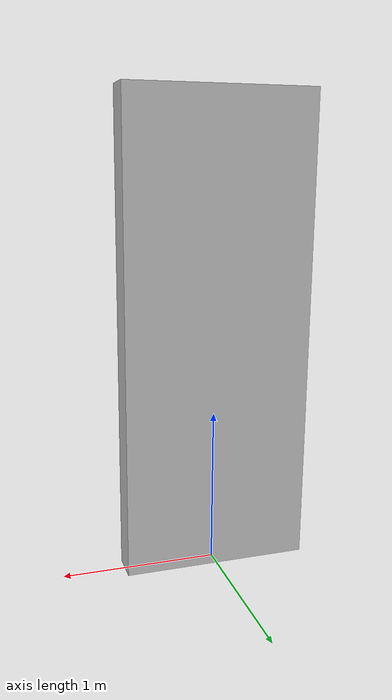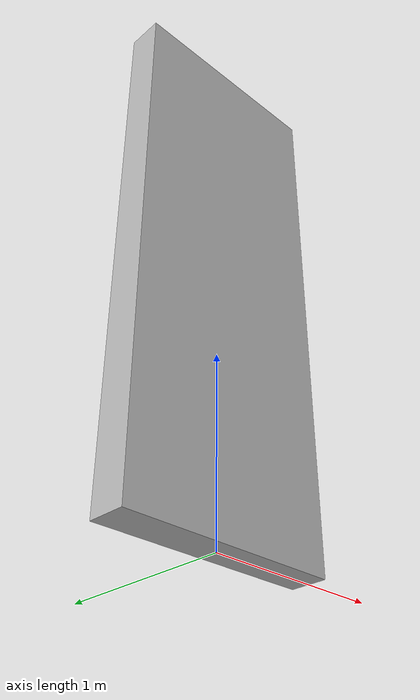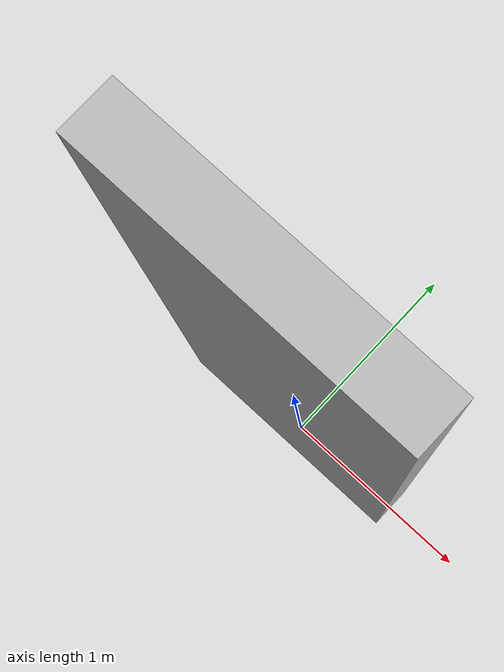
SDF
<?xml version="1.0"?>
<sdf version="1.7">

    <model name="door_wall_1">
        <static>true</static>
        <link name="link">
            <pose>0 0 1.5 0 0 0</pose>
            <collision name="collision">
                <geometry>
                    <box>
                        <size>1.2 0.2 3.0</size>
                    </box>
                </geometry>
            </collision>

            <visual name="visual">
                <cast_shadows>false</cast_shadows>
                <geometry>
                    <box>
                        <size>1.2 0.2 3.0</size>
                    </box>
                </geometry>
            </visual>
        </link>
    </model>

</sdf>
